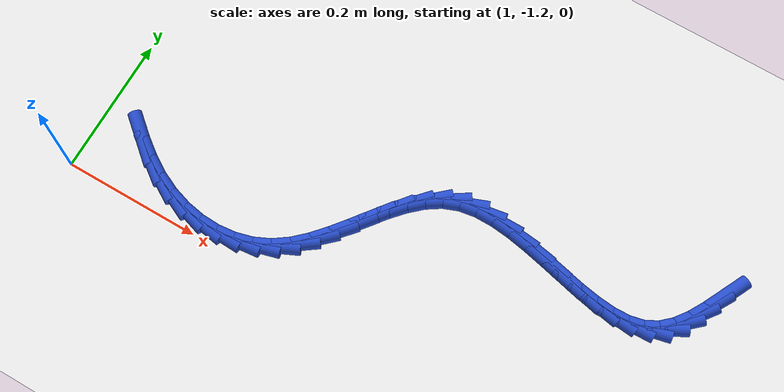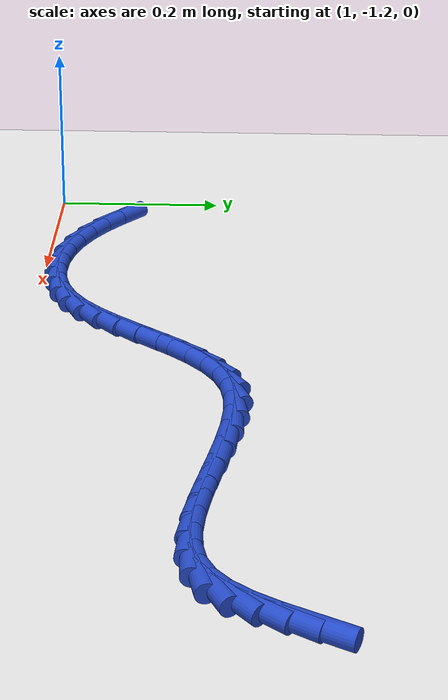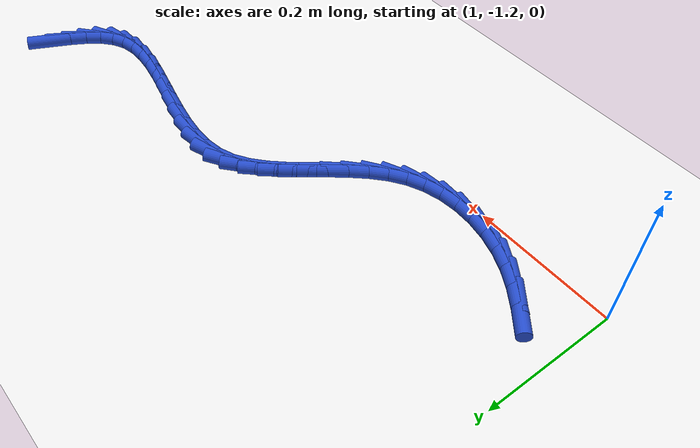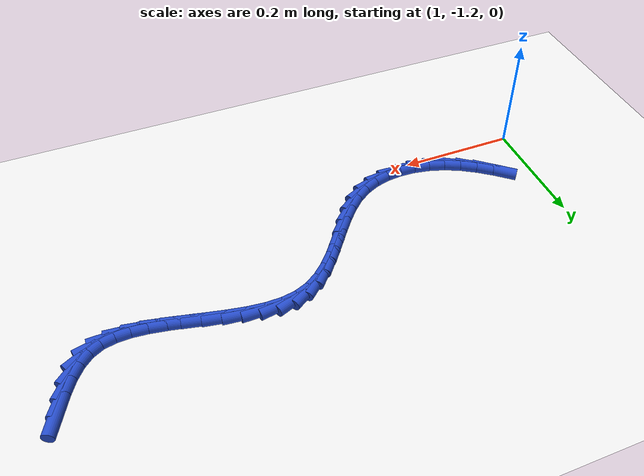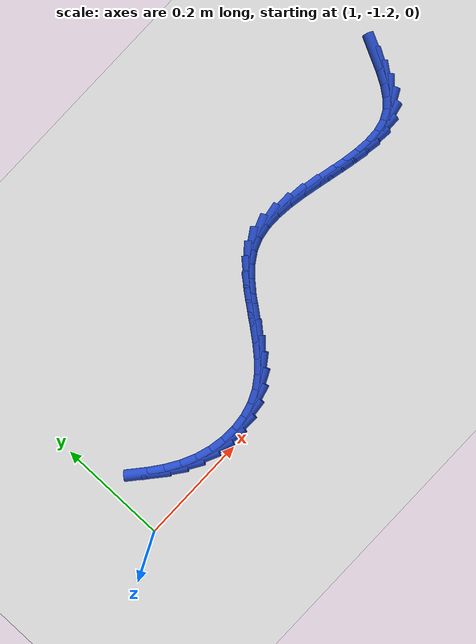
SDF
<sdf version="1.6">
 <world name="default">
  <model name="ground_plane">
   <static>1</static>
   <link name="link">
    <collision name="collision">
     <geometry><plane><normal>0 0 1</normal><size>100 100</size></plane></geometry>
     <surface><friction><ode><mu>100</mu><mu2>50</mu2></ode></friction></surface>
    </collision>
    <visual name="visual">
     <cast_shadows>0</cast_shadows>
     <geometry><plane><normal>0 0 1</normal><size>100 100</size></plane></geometry>
     <material>
      <script><uri>file://media/materials/scripts/gazebo.material</uri><name>Gazebo/WhiteGlow</name></script>
     </material>
    </visual>
   </link>
  </model>
  <model name="line">
   <link name="link_184">
    <pose>1.8585892530259351 -0.9173069411306586 0.01 0 1.57 1.1198487847795275</pose>
    <collision name="collision">
     <geometry><cylinder><radius>0.01</radius><length>0.08</length></cylinder></geometry>
    </collision>
    <visual name="visual">
     <material>
      <script><name>Gazebo/Blue</name><uri>file://media/materials/scripts/gazebo.material</uri></script>
     </material>
     <geometry><cylinder><radius>0.01</radius><length>0.08</length></cylinder></geometry>
    </visual>
   </link>
   <link name="link_185">
    <pose>1.8467934424373886 -0.9416671641439486 0.01 0 1.57 1.0525687350957336</pose>
    <collision name="collision">
     <geometry><cylinder><radius>0.01</radius><length>0.08</length></cylinder></geometry>
    </collision>
    <visual name="visual">
     <material>
      <script><name>Gazebo/Blue</name><uri>file://media/materials/scripts/gazebo.material</uri></script>
     </material>
     <geometry><cylinder><radius>0.01</radius><length>0.08</length></cylinder></geometry>
    </visual>
   </link>
   <link name="link_186">
    <pose>1.834267161642295 -0.9636349725927822 0.01 0 1.57 0.931433588716548</pose>
    <collision name="collision">
     <geometry><cylinder><radius>0.01</radius><length>0.08</length></cylinder></geometry>
    </collision>
    <visual name="visual">
     <material>
      <script><name>Gazebo/Blue</name><uri>file://media/materials/scripts/gazebo.material</uri></script>
     </material>
     <geometry><cylinder><radius>0.01</radius><length>0.08</length></cylinder></geometry>
    </visual>
   </link>
   <link name="link_187">
    <pose>1.8203425500376034 -0.9823620804759068 0.01 0 1.57 0.7412633030767735</pose>
    <collision name="collision">
     <geometry><cylinder><radius>0.01</radius><length>0.08</length></cylinder></geometry>
    </collision>
    <visual name="visual">
     <material>
      <script><name>Gazebo/Blue</name><uri>file://media/materials/scripts/gazebo.material</uri></script>
     </material>
     <geometry><cylinder><radius>0.01</radius><length>0.08</length></cylinder></geometry>
    </visual>
   </link>
   <link name="link_188">
    <pose>1.8043517470202646 -0.9970002017920699 0.01 0 1.57 0.47946772486244377</pose>
    <collision name="collision">
     <geometry><cylinder><radius>0.01</radius><length>0.08</length></cylinder></geometry>
    </collision>
    <visual name="visual">
     <material>
      <script><name>Gazebo/Blue</name><uri>file://media/materials/scripts/gazebo.material</uri></script>
     </material>
     <geometry><cylinder><radius>0.01</radius><length>0.08</length></cylinder></geometry>
    </visual>
   </link>
   <link name="link_189">
    <pose>1.785643818498497 -1.0067270990833501 0.01 0 1.57 0.2176796381009898</pose>
    <collision name="collision">
     <geometry><cylinder><radius>0.01</radius><length>0.08</length></cylinder></geometry>
    </collision>
    <visual name="visual">
     <material>
      <script><name>Gazebo/Blue</name><uri>file://media/materials/scripts/gazebo.material</uri></script>
     </material>
     <geometry><cylinder><radius>0.01</radius><length>0.08</length></cylinder></geometry>
    </visual>
   </link>
   <link name="link_190">
    <pose>1.7640731561181984 -1.011498190674819 0.01 0 1.57 0.027608585606981328</pose>
    <collision name="collision">
     <geometry><cylinder><radius>0.01</radius><length>0.08</length></cylinder></geometry>
    </collision>
    <visual name="visual">
     <material>
      <script><name>Gazebo/Blue</name><uri>file://media/materials/scripts/gazebo.material</uri></script>
     </material>
     <geometry><cylinder><radius>0.01</radius><length>0.08</length></cylinder></geometry>
    </visual>
   </link>
   <link name="link_191">
    <pose>1.7400738127332003 -1.0121609470015345 0.01 0 1.57 -0.09786968822499285</pose>
    <collision name="collision">
     <geometry><cylinder><radius>0.01</radius><length>0.08</length></cylinder></geometry>
    </collision>
    <visual name="visual">
     <material>
      <script><name>Gazebo/Blue</name><uri>file://media/materials/scripts/gazebo.material</uri></script>
     </material>
     <geometry><cylinder><radius>0.01</radius><length>0.08</length></cylinder></geometry>
    </visual>
   </link>
   <link name="link_192">
    <pose>1.7141117226384106 -1.0096119014794698 0.01 0 1.57 -0.17532993356874152</pose>
    <collision name="collision">
     <geometry><cylinder><radius>0.01</radius><length>0.08</length></cylinder></geometry>
    </collision>
    <visual name="visual">
     <material>
      <script><name>Gazebo/Blue</name><uri>file://media/materials/scripts/gazebo.material</uri></script>
     </material>
     <geometry><cylinder><radius>0.01</radius><length>0.08</length></cylinder></geometry>
    </visual>
   </link>
   <link name="link_193">
    <pose>1.6866528201287354 -1.0047475875245964 0.01 0 1.57 -0.21706239675186584</pose>
    <collision name="collision">
     <geometry><cylinder><radius>0.01</radius><length>0.08</length></cylinder></geometry>
    </collision>
    <visual name="visual">
     <material>
      <script><name>Gazebo/Blue</name><uri>file://media/materials/scripts/gazebo.material</uri></script>
     </material>
     <geometry><cylinder><radius>0.01</radius><length>0.08</length></cylinder></geometry>
    </visual>
   </link>
   <link name="link_194">
    <pose>1.6581630394990836 -0.9984645385528865 0.01 0 1.57 -0.2300743828952121</pose>
    <collision name="collision">
     <geometry><cylinder><radius>0.01</radius><length>0.08</length></cylinder></geometry>
    </collision>
    <visual name="visual">
     <material>
      <script><name>Gazebo/Blue</name><uri>file://media/materials/scripts/gazebo.material</uri></script>
     </material>
     <geometry><cylinder><radius>0.01</radius><length>0.08</length></cylinder></geometry>
    </visual>
   </link>
   <link name="link_195">
    <pose>1.6291083150443622 -0.9916592879803126 0.01 0 1.57 -0.2171096146841612</pose>
    <collision name="collision">
     <geometry><cylinder><radius>0.01</radius><length>0.08</length></cylinder></geometry>
    </collision>
    <visual name="visual">
     <material>
      <script><name>Gazebo/Blue</name><uri>file://media/materials/scripts/gazebo.material</uri></script>
     </material>
     <geometry><cylinder><radius>0.01</radius><length>0.08</length></cylinder></geometry>
    </visual>
   </link>
   <link name="link_196">
    <pose>1.5999545810594786 -0.9852283692228466 0.01 0 1.57 -0.17736698567555634</pose>
    <collision name="collision">
     <geometry><cylinder><radius>0.01</radius><length>0.08</length></cylinder></geometry>
    </collision>
    <visual name="visual">
     <material>
      <script><name>Gazebo/Blue</name><uri>file://media/materials/scripts/gazebo.material</uri></script>
     </material>
     <geometry><cylinder><radius>0.01</radius><length>0.08</length></cylinder></geometry>
    </visual>
   </link>
   <link name="link_197">
    <pose>1.5711677718393404 -0.9800683156964615 0.01 0 1.57 -0.10665039434322977</pose>
    <collision name="collision">
     <geometry><cylinder><radius>0.01</radius><length>0.08</length></cylinder></geometry>
    </collision>
    <visual name="visual">
     <material>
      <script><name>Gazebo/Blue</name><uri>file://media/materials/scripts/gazebo.material</uri></script>
     </material>
     <geometry><cylinder><radius>0.01</radius><length>0.08</length></cylinder></geometry>
    </visual>
   </link>
   <link name="link_198">
    <pose>1.5432138216788553 -0.9770756608171289 0.01 0 1.57 0.002674042187098032</pose>
    <collision name="collision">
     <geometry><cylinder><radius>0.01</radius><length>0.08</length></cylinder></geometry>
    </collision>
    <visual name="visual">
     <material>
      <script><name>Gazebo/Blue</name><uri>file://media/materials/scripts/gazebo.material</uri></script>
     </material>
     <geometry><cylinder><radius>0.01</radius><length>0.08</length></cylinder></geometry>
    </visual>
   </link>
   <link name="link_199">
    <pose>1.5165586648729308 -0.977146938000821 0.01 0 1.57 0.16058488647792374</pose>
    <collision name="collision">
     <geometry><cylinder><radius>0.01</radius><length>0.08</length></cylinder></geometry>
    </collision>
    <visual name="visual">
     <material>
      <script><name>Gazebo/Blue</name><uri>file://media/materials/scripts/gazebo.material</uri></script>
     </material>
     <geometry><cylinder><radius>0.01</radius><length>0.08</length></cylinder></geometry>
    </visual>
   </link>
   <link name="link_200">
    <pose>1.491668235716474 -0.9811786806635099 0.01 0 1.57 0.3713716171444878</pose>
    <collision name="collision">
     <geometry><cylinder><radius>0.01</radius><length>0.08</length></cylinder></geometry>
    </collision>
    <visual name="visual">
     <material>
      <script><name>Gazebo/Blue</name><uri>file://media/materials/scripts/gazebo.material</uri></script>
     </material>
     <geometry><cylinder><radius>0.01</radius><length>0.08</length></cylinder></geometry>
    </visual>
   </link>
   <link name="link_201">
    <pose>1.4689811527194954 -0.9900139827965599 0.01 0 1.57 0.5818590063232444</pose>
    <collision name="collision">
     <geometry><cylinder><radius>0.01</radius><length>0.08</length></cylinder></geometry>
    </collision>
    <visual name="visual">
     <material>
      <script><name>Gazebo/Blue</name><uri>file://media/materials/scripts/gazebo.material</uri></script>
     </material>
     <geometry><cylinder><radius>0.01</radius><length>0.08</length></cylinder></geometry>
    </visual>
   </link>
   <link name="link_202">
    <pose>1.4484403916566335 -1.003526284299812 0.01 0 1.57 0.7393240566134702</pose>
    <collision name="collision">
     <geometry><cylinder><radius>0.01</radius><length>0.08</length></cylinder></geometry>
    </collision>
    <visual name="visual">
     <material>
      <script><name>Gazebo/Blue</name><uri>file://media/materials/scripts/gazebo.material</uri></script>
     </material>
     <geometry><cylinder><radius>0.01</radius><length>0.08</length></cylinder></geometry>
    </visual>
   </link>
   <link name="link_203">
    <pose>1.4295573838297206 -1.0207447700606302 0.01 0 1.57 0.8436900029104579</pose>
    <collision name="collision">
     <geometry><cylinder><radius>0.01</radius><length>0.08</length></cylinder></geometry>
    </collision>
    <visual name="visual">
     <material>
      <script><name>Gazebo/Blue</name><uri>file://media/materials/scripts/gazebo.material</uri></script>
     </material>
     <geometry><cylinder><radius>0.01</radius><length>0.08</length></cylinder></geometry>
    </visual>
   </link>
   <link name="link_204">
    <pose>1.4118291415279642 -1.0406704162313607 0.01 0 1.57 0.9025877182703912</pose>
    <collision name="collision">
     <geometry><cylinder><radius>0.01</radius><length>0.08</length></cylinder></geometry>
    </collision>
    <visual name="visual">
     <material>
      <script><name>Gazebo/Blue</name><uri>file://media/materials/scripts/gazebo.material</uri></script>
     </material>
     <geometry><cylinder><radius>0.01</radius><length>0.08</length></cylinder></geometry>
    </visual>
   </link>
   <link name="link_205">
    <pose>1.394752677040573 -1.0623041989643516 0.01 0 1.57 0.9224291216671026</pose>
    <collision name="collision">
     <geometry><cylinder><radius>0.01</radius><length>0.08</length></cylinder></geometry>
    </collision>
    <visual name="visual">
     <material>
      <script><name>Gazebo/Blue</name><uri>file://media/materials/scripts/gazebo.material</uri></script>
     </material>
     <geometry><cylinder><radius>0.01</radius><length>0.08</length></cylinder></geometry>
    </visual>
   </link>
   <link name="link_206">
    <pose>1.3778250026567564 -1.08464709441195 0.01 0 1.57 0.9061032826089774</pose>
    <collision name="collision">
     <geometry><cylinder><radius>0.01</radius><length>0.08</length></cylinder></geometry>
    </collision>
    <visual name="visual">
     <material>
      <script><name>Gazebo/Blue</name><uri>file://media/materials/scripts/gazebo.material</uri></script>
     </material>
     <geometry><cylinder><radius>0.01</radius><length>0.08</length></cylinder></geometry>
    </visual>
   </link>
   <link name="link_207">
    <pose>1.3605431306657227 -1.1067000787265042 0.01 0 1.57 0.8527711659511055</pose>
    <collision name="collision">
     <geometry><cylinder><radius>0.01</radius><length>0.08</length></cylinder></geometry>
    </collision>
    <visual name="visual">
     <material>
      <script><name>Gazebo/Blue</name><uri>file://media/materials/scripts/gazebo.material</uri></script>
     </material>
     <geometry><cylinder><radius>0.01</radius><length>0.08</length></cylinder></geometry>
    </visual>
   </link>
   <link name="link_208">
    <pose>1.3424040733566802 -1.1274641280603603 0.01 0 1.57 0.7584624494341278</pose>
    <collision name="collision">
     <geometry><cylinder><radius>0.01</radius><length>0.08</length></cylinder></geometry>
    </collision>
    <visual name="visual">
     <material>
      <script><name>Gazebo/Blue</name><uri>file://media/materials/scripts/gazebo.material</uri></script>
     </material>
     <geometry><cylinder><radius>0.01</radius><length>0.08</length></cylinder></geometry>
    </visual>
   </link>
   <link name="link_209">
    <pose>1.3229048430188384 -1.1459402185658674 0.01 0 1.57 0.618084349880148</pose>
    <collision name="collision">
     <geometry><cylinder><radius>0.01</radius><length>0.08</length></cylinder></geometry>
    </collision>
    <visual name="visual">
     <material>
      <script><name>Gazebo/Blue</name><uri>file://media/materials/scripts/gazebo.material</uri></script>
     </material>
     <geometry><cylinder><radius>0.01</radius><length>0.08</length></cylinder></geometry>
    </visual>
   </link>
   <link name="link_210">
    <pose>1.301542451941405 -1.1611293263953715 0.01 0 1.57 0.4394722212427557</pose>
    <collision name="collision">
     <geometry><cylinder><radius>0.01</radius><length>0.08</length></cylinder></geometry>
    </collision>
    <visual name="visual">
     <material>
      <script><name>Gazebo/Blue</name><uri>file://media/materials/scripts/gazebo.material</uri></script>
     </material>
     <geometry><cylinder><radius>0.01</radius><length>0.08</length></cylinder></geometry>
    </visual>
   </link>
   <link name="link_211">
    <pose>1.2779785062396833 -1.1722075840340869 0.01 0 1.57 0.264805642351382</pose>
    <collision name="collision">
     <geometry><cylinder><radius>0.01</radius><length>0.08</length></cylinder></geometry>
    </collision>
    <visual name="visual">
     <material>
      <script><name>Gazebo/Blue</name><uri>file://media/materials/scripts/gazebo.material</uri></script>
     </material>
     <geometry><cylinder><radius>0.01</radius><length>0.08</length></cylinder></geometry>
    </visual>
   </link>
   <link name="link_212">
    <pose>1.252574920381735 -1.1790963733235083 0.01 0 1.57 0.1052052947161778</pose>
    <collision name="collision">
     <geometry><cylinder><radius>0.01</radius><length>0.08</length></cylinder></geometry>
    </collision>
    <visual name="visual">
     <material>
      <script><name>Gazebo/Blue</name><uri>file://media/materials/scripts/gazebo.material</uri></script>
     </material>
     <geometry><cylinder><radius>0.01</radius><length>0.08</length></cylinder></geometry>
    </visual>
   </link>
   <link name="link_213">
    <pose>1.2258798283674492 -1.1819152459337146 0.01 0 1.57 -0.04121404568589523</pose>
    <collision name="collision">
     <geometry><cylinder><radius>0.01</radius><length>0.08</length></cylinder></geometry>
    </collision>
    <visual name="visual">
     <material>
      <script><name>Gazebo/Blue</name><uri>file://media/materials/scripts/gazebo.material</uri></script>
     </material>
     <geometry><cylinder><radius>0.01</radius><length>0.08</length></cylinder></geometry>
    </visual>
   </link>
   <link name="link_214">
    <pose>1.1984413657230044 -1.18078375515902 0.01 0 1.57 -0.17768053015817897</pose>
    <collision name="collision">
     <geometry><cylinder><radius>0.01</radius><length>0.08</length></cylinder></geometry>
    </collision>
    <visual name="visual">
     <material>
      <script><name>Gazebo/Blue</name><uri>file://media/materials/scripts/gazebo.material</uri></script>
     </material>
     <geometry><cylinder><radius>0.01</radius><length>0.08</length></cylinder></geometry>
    </visual>
   </link>
   <link name="link_215">
    <pose>1.1708076679745782 -1.1758214542937377 0.01 0 1.57 -0.3078298813248787</pose>
    <collision name="collision">
     <geometry><cylinder><radius>0.01</radius><length>0.08</length></cylinder></geometry>
    </collision>
    <visual name="visual">
     <material>
      <script><name>Gazebo/Blue</name><uri>file://media/materials/scripts/gazebo.material</uri></script>
     </material>
     <geometry><cylinder><radius>0.01</radius><length>0.08</length></cylinder></geometry>
    </visual>
   </link>
   <link name="link_216">
    <pose>1.1435268706483492 -1.1671478966321827 0.01 0 1.57 -0.4351516769366832</pose>
    <collision name="collision">
     <geometry><cylinder><radius>0.01</radius><length>0.08</length></cylinder></geometry>
    </collision>
    <visual name="visual">
     <material>
      <script><name>Gazebo/Blue</name><uri>file://media/materials/scripts/gazebo.material</uri></script>
     </material>
     <geometry><cylinder><radius>0.01</radius><length>0.08</length></cylinder></geometry>
    </visual>
   </link>
   <link name="link_217">
    <pose>1.1171456436438487 -1.1548840268404514 0.01 0 1.57 -0.5528033817349938</pose>
    <collision name="collision">
     <geometry><cylinder><radius>0.01</radius><length>0.08</length></cylinder></geometry>
    </collision>
    <visual name="visual">
     <material>
      <script><name>Gazebo/Blue</name><uri>file://media/materials/scripts/gazebo.material</uri></script>
     </material>
     <geometry><cylinder><radius>0.01</radius><length>0.08</length></cylinder></geometry>
    </visual>
   </link>
   <link name="link_218">
    <pose>1.0919877611601485 -1.1393623924436795 0.01 0 1.57 -0.6423653769147665</pose>
    <collision name="collision">
     <geometry><cylinder><radius>0.01</radius><length>0.08</length></cylinder></geometry>
    </collision>
    <visual name="visual">
     <material>
      <script><name>Gazebo/Blue</name><uri>file://media/materials/scripts/gazebo.material</uri></script>
     </material>
     <geometry><cylinder><radius>0.01</radius><length>0.08</length></cylinder></geometry>
    </visual>
   </link>
   <link name="link_219">
    <pose>1.0679171367783395 -1.1213521030959346 0.01 0 1.57 -0.7038948596574359</pose>
    <collision name="collision">
     <geometry><cylinder><radius>0.01</radius><length>0.08</length></cylinder></geometry>
    </collision>
    <visual name="visual">
     <material>
      <script><name>Gazebo/Blue</name><uri>file://media/materials/scripts/gazebo.material</uri></script>
     </material>
     <geometry><cylinder><radius>0.01</radius><length>0.08</length></cylinder></geometry>
    </visual>
   </link>
  </model>
 </world>
</sdf>
